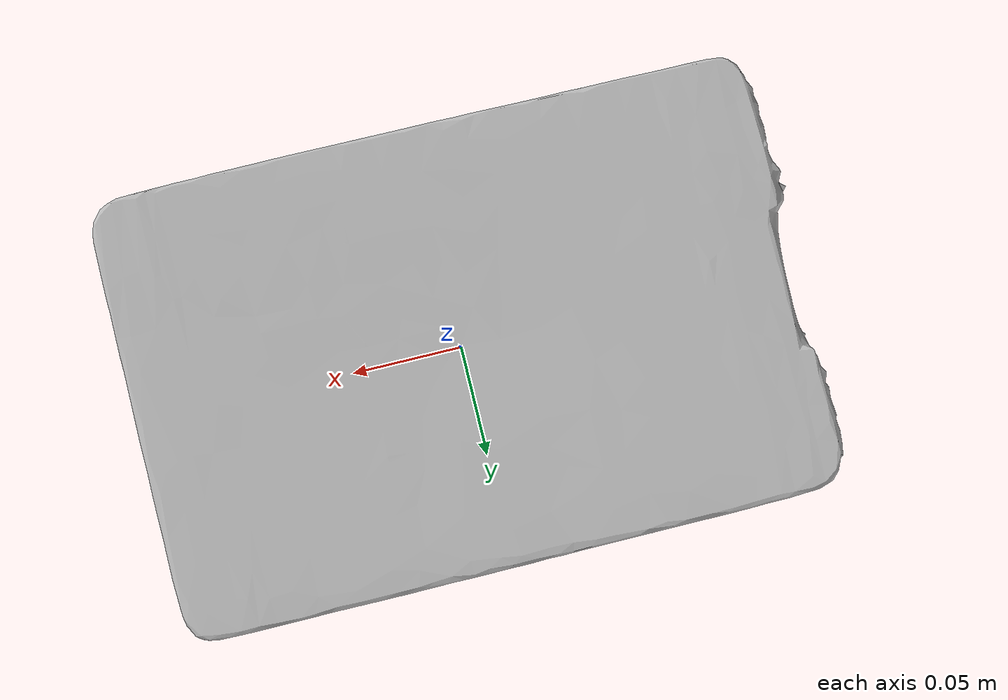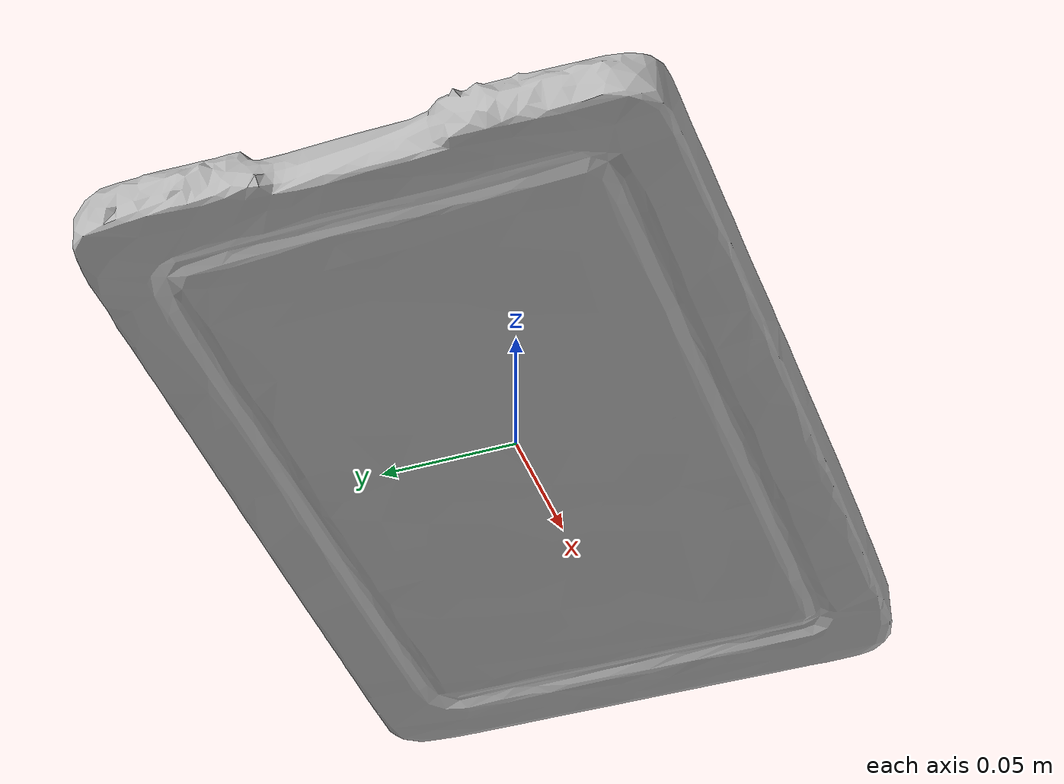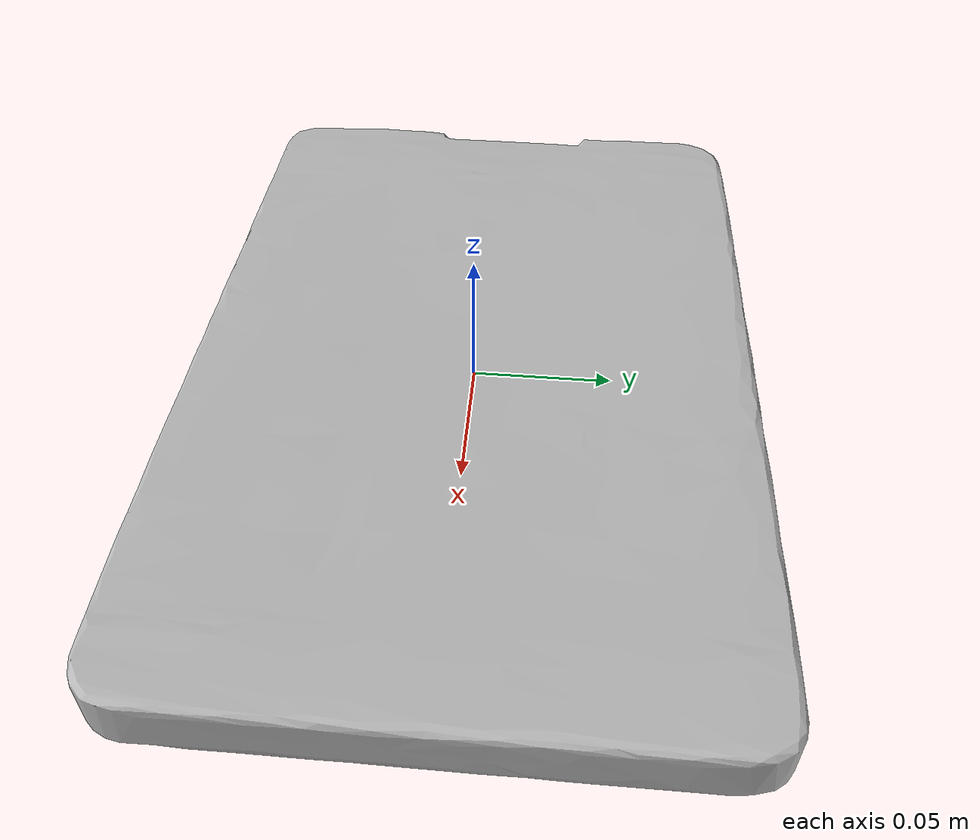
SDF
<?xml version='1.0'?>
<sdf version='1.6'>
	<model name='a_choppingboard'>
		<static>false</static>
		<pose>0 0 0 0 0 0</pose>

		<link name='link'>
			<inertial>
			<mass>0.765</mass>
			<pose>0.00010961 -0.0013907 6.2505e-05 0 0 0</pose>
				<inertia>
					<ixx>4.7457e-06</ixx>
					<ixy>0</ixy>
					<ixz>0</ixz>
					<iyy>7.247e-06</iyy>
					<iyz>0</iyz>
					<izz>1.4229e-05</izz>
				</inertia>
			</inertial>
			<collision name='collision'>
				<geometry>
					<mesh>
						<uri>model://a_choppingboard/a_choppingboard.dae</uri>
					</mesh>
				</geometry>
				<surface>
					<friction>
						<ode>
							<mu>0.2</mu>
							<mu2>0.2</mu2>
						</ode>
					</friction>
				</surface>
			</collision>
			<visual name='visual'>
				<geometry>
					<mesh>
						<uri>model://a_choppingboard/a_choppingboard.dae</uri>
					</mesh>
				</geometry>
			</visual>
		</link>
	</model>
</sdf>
